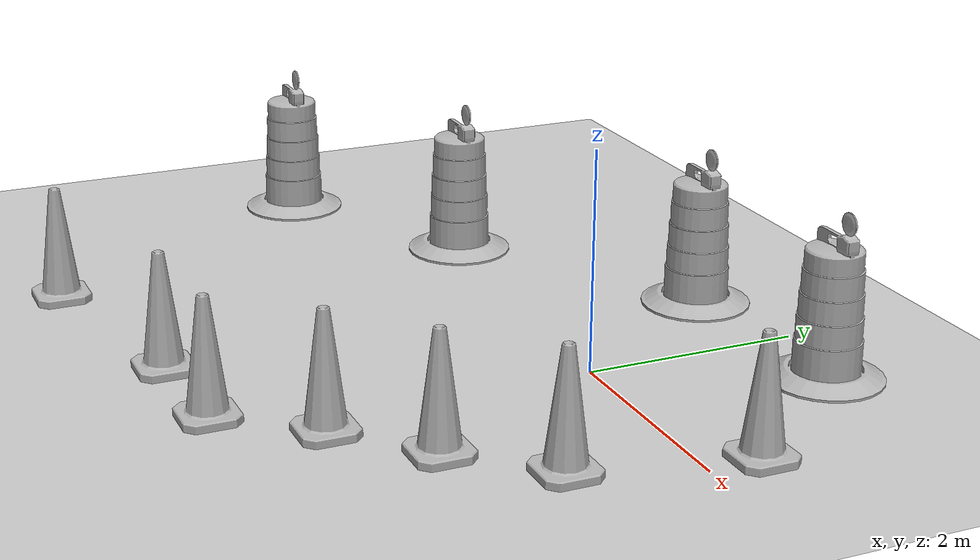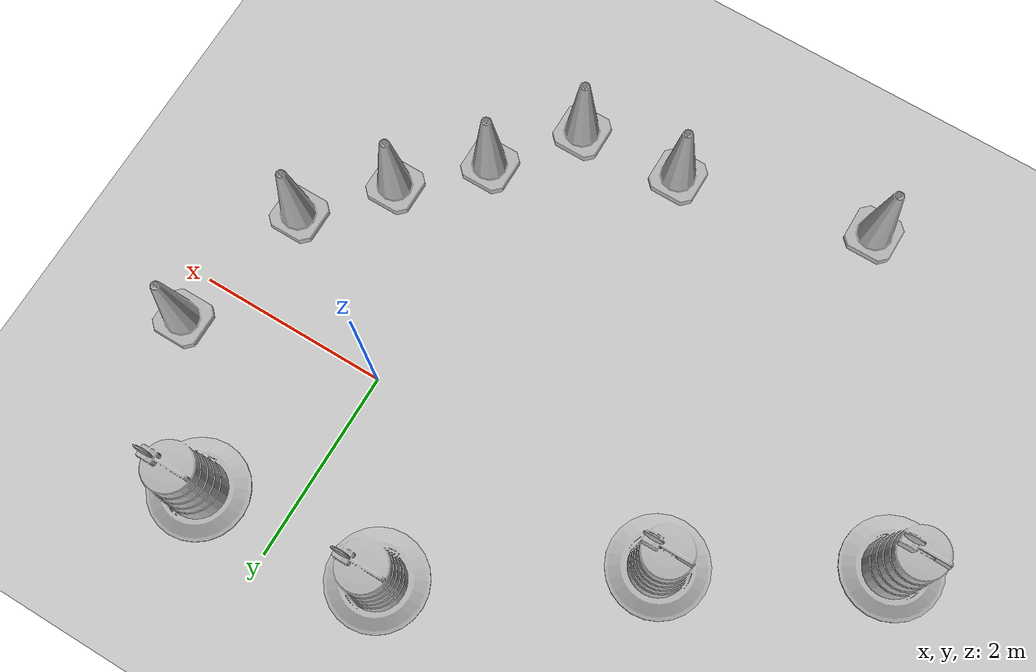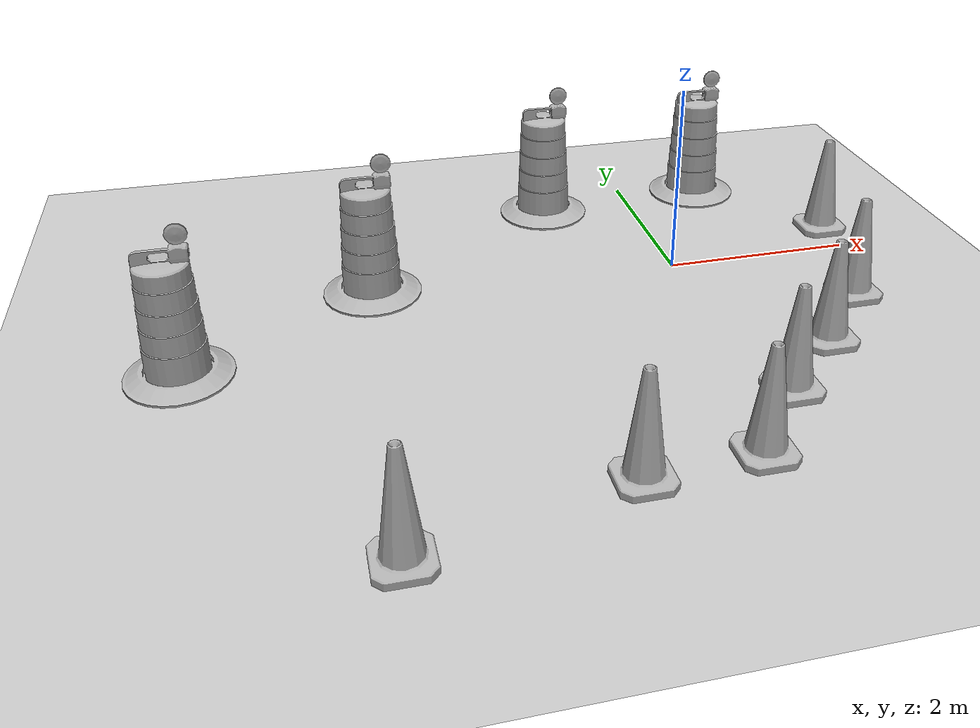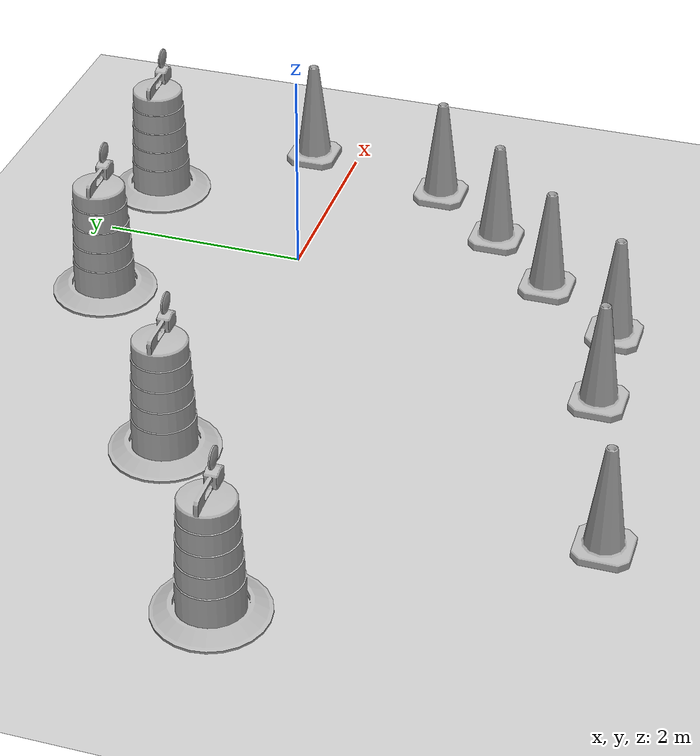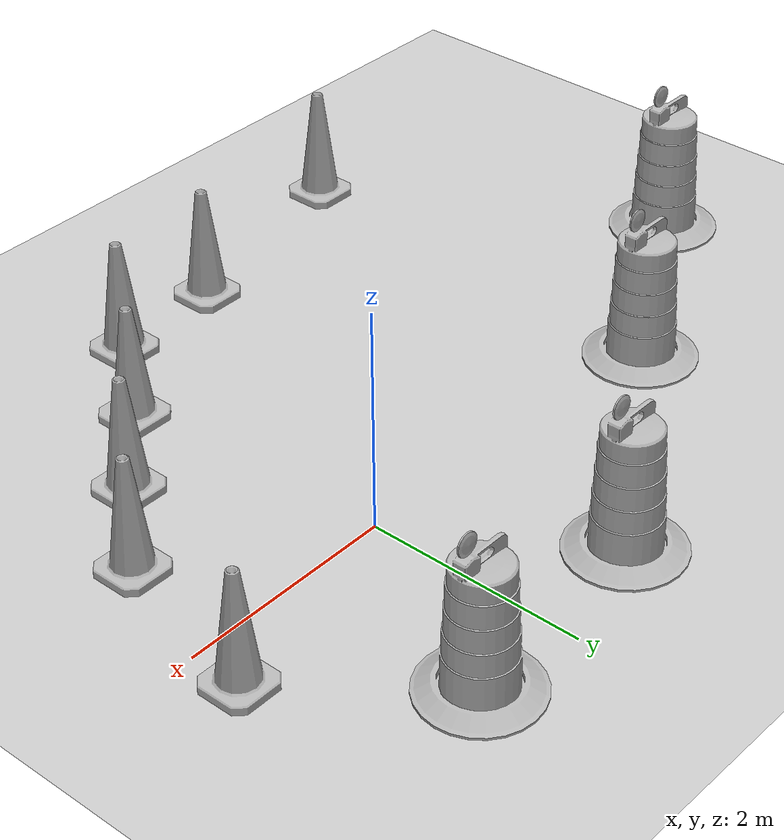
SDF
<sdf version="1.7">
 <world name="default">
  <light name="sun" type="directional">
   <pose>0 0 10 0 -0 0</pose>
   <diffuse>0.8 0.8 0.8 1</diffuse>
   <specular>0.2 0.2 0.2 1</specular>
   <attenuation>
    <range>1000</range>
    <constant>0.9</constant>
    <linear>0.01</linear>
    <quadratic>0.001</quadratic>
   </attenuation>
   <direction>-0.5 0.1 -0.9</direction>
   <spot><inner_angle>0</inner_angle><outer_angle>0</outer_angle><falloff>0</falloff></spot>
  </light>
  <model name="ground_plane">
   <static>1</static>
   <link name="link">
    <collision name="collision">
     <geometry><plane><normal>0 0 1</normal><size>100 100</size></plane></geometry>
     <surface><friction><ode><mu>100</mu><mu2>50</mu2></ode></friction></surface>
    </collision>
    <visual name="visual">
     <cast_shadows>0</cast_shadows>
     <geometry><plane><normal>0 0 1</normal><size>100 100</size></plane></geometry>
     <material>
      <script><uri>file://media/materials/scripts/gazebo.material</uri><name>Gazebo/Grey</name></script>
     </material>
    </visual>
   </link>
  </model>
  <gravity>0 0 -9.8</gravity>
  <magnetic_field>6e-06 2.3e-05 -4.2e-05</magnetic_field>
  <atmosphere type="adiabatic"/>
  <physics type="ode">
   <max_step_size>0.001</max_step_size>
   <real_time_factor>1</real_time_factor>
   <real_time_update_rate>1000</real_time_update_rate>
  </physics>
  <scene><ambient>0.4 0.4 0.4 1</ambient><background>0.7 0.7 0.7 1</background><shadows>1</shadows></scene>
  <audio><device>default</device></audio>
  <spherical_coordinates>
   <surface_model>EARTH_WGS84</surface_model>
   <latitude_deg>0</latitude_deg>
   <longitude_deg>0</longitude_deg>
   <elevation>0</elevation>
   <heading_deg>0</heading_deg>
  </spherical_coordinates>
  <model name="Construction Barrel">
   <link name="link">
    <inertial>
     <pose>0 0 0.4 0 -0 0</pose>
     <mass>500</mass>
     <inertia><ixx>51.2096</ixx><iyy>51.2096</iyy><izz>25</izz><ixy>0</ixy><ixz>0</ixz><iyz>0</iyz></inertia>
    </inertial>
    <collision name="collision">
     <geometry><mesh><uri>model://construction_barrel/meshes/construction_barrel.dae</uri></mesh></geometry>
    </collision>
    <visual name="visual">
     <geometry><mesh><uri>model://construction_barrel/meshes/construction_barrel.dae</uri></mesh></geometry>
    </visual>
   </link>
   <pose>-1.0546 1.64841 -2e-06 7e-06 -2e-06 -2.6e-05</pose>
  </model>
  <model name="Construction Cone">
   <link name="link">
    <collision name="collision">
     <geometry>
      <mesh><scale>10 10 10</scale><uri>model://construction_cone/meshes/construction_cone.dae</uri></mesh>
     </geometry>
    </collision>
    <visual name="visual">
     <geometry>
      <mesh><scale>10 10 10</scale><uri>model://construction_cone/meshes/construction_cone.dae</uri></mesh>
     </geometry>
    </visual>
    <inertial>
     <inertia><ixx>1</ixx><ixy>0</ixy><ixz>0</ixz><iyy>1</iyy><iyz>0</iyz><izz>1</izz></inertia>
     <mass>1</mass>
    </inertial>
   </link>
   <pose>1.60899 -1.03968 -0 0 -0 0</pose>
  </model>
  <model name="Construction Barrel_0">
   <link name="link">
    <inertial>
     <pose>0 0 0.4 0 -0 0</pose>
     <mass>500</mass>
     <inertia><ixx>51.2096</ixx><iyy>51.2096</iyy><izz>25</izz><ixy>0</ixy><ixz>0</ixz><iyz>0</iyz></inertia>
    </inertial>
    <collision name="collision">
     <geometry><mesh><uri>model://construction_barrel/meshes/construction_barrel.dae</uri></mesh></geometry>
    </collision>
    <visual name="visual">
     <geometry><mesh><uri>model://construction_barrel/meshes/construction_barrel.dae</uri></mesh></geometry>
    </visual>
   </link>
   <pose>-3.26315 0.174084 -2e-06 7e-06 -4e-06 -2.7e-05</pose>
  </model>
  <model name="Construction Cone_0">
   <link name="link">
    <collision name="collision">
     <geometry>
      <mesh><scale>10 10 10</scale><uri>model://construction_cone/meshes/construction_cone.dae</uri></mesh>
     </geometry>
    </collision>
    <visual name="visual">
     <geometry>
      <mesh><scale>10 10 10</scale><uri>model://construction_cone/meshes/construction_cone.dae</uri></mesh>
     </geometry>
    </visual>
    <inertial>
     <inertia><ixx>1</ixx><ixy>0</ixy><ixz>0</ixz><iyy>1</iyy><iyz>0</iyz><izz>1</izz></inertia>
     <mass>1</mass>
    </inertial>
   </link>
   <pose>-0.387253 -3.28838 -0 0 -1e-06 0</pose>
  </model>
  <model name="Construction Cone_1">
   <link name="link">
    <collision name="collision">
     <geometry>
      <mesh><scale>10 10 10</scale><uri>model://construction_cone/meshes/construction_cone.dae</uri></mesh>
     </geometry>
    </collision>
    <visual name="visual">
     <geometry>
      <mesh><scale>10 10 10</scale><uri>model://construction_cone/meshes/construction_cone.dae</uri></mesh>
     </geometry>
    </visual>
    <inertial>
     <inertia><ixx>1</ixx><ixy>0</ixy><ixz>0</ixz><iyy>1</iyy><iyz>0</iyz><izz>1</izz></inertia>
     <mass>1</mass>
    </inertial>
   </link>
   <pose>0.234563 -2.49127 -0 0 -0 0</pose>
  </model>
  <model name="Construction Cone_2">
   <link name="link">
    <collision name="collision">
     <geometry>
      <mesh><scale>10 10 10</scale><uri>model://construction_cone/meshes/construction_cone.dae</uri></mesh>
     </geometry>
    </collision>
    <visual name="visual">
     <geometry>
      <mesh><scale>10 10 10</scale><uri>model://construction_cone/meshes/construction_cone.dae</uri></mesh>
     </geometry>
    </visual>
    <inertial>
     <inertia><ixx>1</ixx><ixy>0</ixy><ixz>0</ixz><iyy>1</iyy><iyz>0</iyz><izz>1</izz></inertia>
     <mass>1</mass>
    </inertial>
   </link>
   <pose>0.942311 -1.80203 -0 0 -1e-06 0</pose>
  </model>
  <model name="Construction Cone_3">
   <link name="link">
    <collision name="collision">
     <geometry>
      <mesh><scale>10 10 10</scale><uri>model://construction_cone/meshes/construction_cone.dae</uri></mesh>
     </geometry>
    </collision>
    <visual name="visual">
     <geometry>
      <mesh><scale>10 10 10</scale><uri>model://construction_cone/meshes/construction_cone.dae</uri></mesh>
     </geometry>
    </visual>
    <inertial>
     <inertia><ixx>1</ixx><ixy>0</ixy><ixz>0</ixz><iyy>1</iyy><iyz>0</iyz><izz>1</izz></inertia>
     <mass>1</mass>
    </inertial>
   </link>
   <pose>1.98319 0.469164 -0 0 -1e-06 0</pose>
  </model>
  <model name="Construction Cone_4">
   <link name="link">
    <collision name="collision">
     <geometry>
      <mesh><scale>10 10 10</scale><uri>model://construction_cone/meshes/construction_cone.dae</uri></mesh>
     </geometry>
    </collision>
    <visual name="visual">
     <geometry>
      <mesh><scale>10 10 10</scale><uri>model://construction_cone/meshes/construction_cone.dae</uri></mesh>
     </geometry>
    </visual>
    <inertial>
     <inertia><ixx>1</ixx><ixy>0</ixy><ixz>0</ixz><iyy>1</iyy><iyz>0</iyz><izz>1</izz></inertia>
     <mass>1</mass>
    </inertial>
   </link>
   <pose>-1.47531 -3.36722 -0 0 -0 0</pose>
  </model>
  <model name="Construction Cone_5">
   <link name="link">
    <collision name="collision">
     <geometry>
      <mesh><scale>10 10 10</scale><uri>model://construction_cone/meshes/construction_cone.dae</uri></mesh>
     </geometry>
    </collision>
    <visual name="visual">
     <geometry>
      <mesh><scale>10 10 10</scale><uri>model://construction_cone/meshes/construction_cone.dae</uri></mesh>
     </geometry>
    </visual>
    <inertial>
     <inertia><ixx>1</ixx><ixy>0</ixy><ixz>0</ixz><iyy>1</iyy><iyz>0</iyz><izz>1</izz></inertia>
     <mass>1</mass>
    </inertial>
   </link>
   <pose>-3.47823 -3.83638 -0 0 -0 0</pose>
  </model>
  <model name="Construction Barrel_1">
   <link name="link">
    <inertial>
     <pose>0 0 0.4 0 -0 0</pose>
     <mass>500</mass>
     <inertia><ixx>51.2096</ixx><iyy>51.2096</iyy><izz>25</izz><ixy>0</ixy><ixz>0</ixz><iyz>0</iyz></inertia>
    </inertial>
    <collision name="collision">
     <geometry><mesh><uri>model://construction_barrel/meshes/construction_barrel.dae</uri></mesh></geometry>
    </collision>
    <visual name="visual">
     <geometry><mesh><uri>model://construction_barrel/meshes/construction_barrel.dae</uri></mesh></geometry>
    </visual>
   </link>
   <pose>-5.1665 -0.95353 -1e-06 2e-06 0 -7e-06</pose>
  </model>
  <model name="Construction Barrel_2">
   <link name="link">
    <inertial>
     <pose>0 0 0.4 0 -0 0</pose>
     <mass>500</mass>
     <inertia><ixx>51.2096</ixx><iyy>51.2096</iyy><izz>25</izz><ixy>0</ixy><ixz>0</ixz><iyz>0</iyz></inertia>
    </inertial>
    <collision name="collision">
     <geometry><mesh><uri>model://construction_barrel/meshes/construction_barrel.dae</uri></mesh></geometry>
    </collision>
    <visual name="visual">
     <geometry><mesh><uri>model://construction_barrel/meshes/construction_barrel.dae</uri></mesh></geometry>
    </visual>
   </link>
   <pose>0.885429 1.79635 -1e-06 3e-06 -0 -4e-06</pose>
  </model>
 </world>
</sdf>
